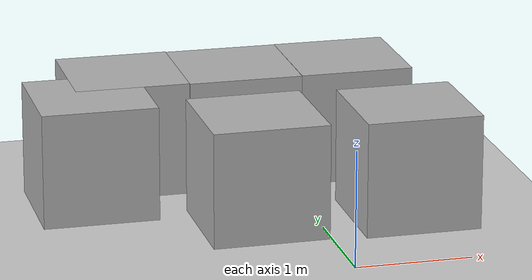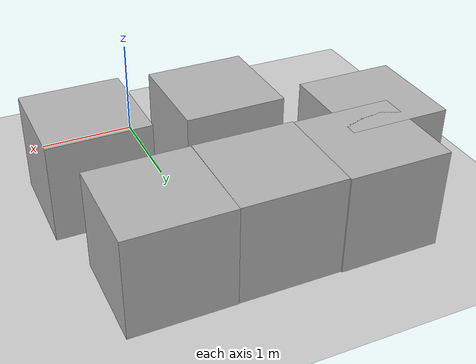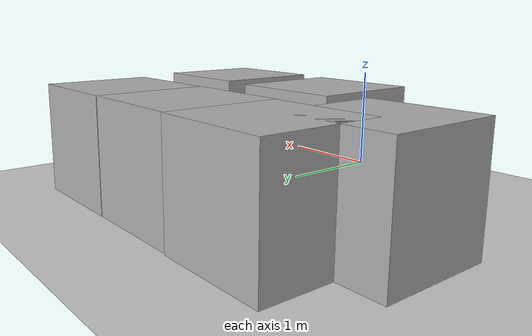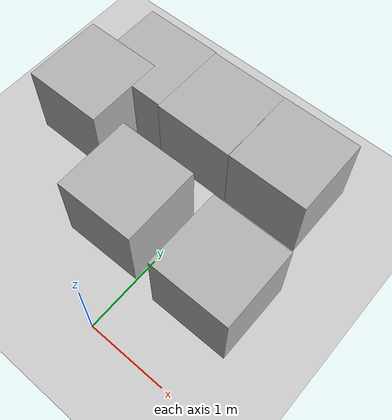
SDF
<sdf version='1.10'>
  <world name='empty'>
    <physics name='1ms' type='ignored'>
      <max_step_size>0.001</max_step_size>
      <real_time_factor>1</real_time_factor>
      <real_time_update_rate>1000</real_time_update_rate>
    </physics>
    <plugin name='gz::sim::systems::Physics' filename='gz-sim-physics-system'/>
    <plugin name='gz::sim::systems::UserCommands' filename='gz-sim-user-commands-system'/>
    <plugin name='gz::sim::systems::SceneBroadcaster' filename='gz-sim-scene-broadcaster-system'/>
    <plugin name='gz::sim::systems::Contact' filename='gz-sim-contact-system'/>
    <gravity>0 0 -9.8000000000000007</gravity>
    <magnetic_field>5.5644999999999998e-06 2.2875799999999999e-05 -4.2388400000000002e-05</magnetic_field>
    <atmosphere type='adiabatic'/>
    <scene>
      <ambient>0.400000006 0.400000006 0.400000006 1</ambient>
      <background>0.699999988 0.699999988 0.699999988 1</background>
      <shadows>true</shadows>
    </scene>
    <model name='ground_plane'>
      <static>true</static>
      <link name='link'>
        <collision name='collision'>
          <geometry>
            <plane>
              <normal>0 0 1</normal>
              <size>100 100</size>
            </plane>
          </geometry>
          <surface>
            <friction>
              <ode/>
            </friction>
            <bounce/>
            <contact/>
          </surface>
        </collision>
        <visual name='visual'>
          <geometry>
            <plane>
              <normal>0 0 1</normal>
              <size>100 100</size>
            </plane>
          </geometry>
          <material>
            <ambient>0.800000012 0.800000012 0.800000012 1</ambient>
            <diffuse>0.800000012 0.800000012 0.800000012 1</diffuse>
            <specular>0.800000012 0.800000012 0.800000012 1</specular>
          </material>
        </visual>
        <pose>0 0 0 0 0 0</pose>
        <inertial>
          <pose>0 0 0 0 0 0</pose>
          <mass>1</mass>
          <inertia>
            <ixx>1</ixx>
            <ixy>0</ixy>
            <ixz>0</ixz>
            <iyy>1</iyy>
            <iyz>0</iyz>
            <izz>1</izz>
          </inertia>
        </inertial>
        <enable_wind>false</enable_wind>
      </link>
      <pose>0 0 0 0 0 0</pose>
      <self_collide>false</self_collide>
    </model>
    <model name='box_0'>
      <static>true</static>
      <pose>0.78544282913208008 1.1469700336456299 0.5 9.5852598861329469e-21 -1.7019100547197896e-20 -1.1462799731553673e-21</pose>
      <link name='box_link'>
        <inertial>
          <inertia>
            <ixx>0.16666</ixx>
            <ixy>0</ixy>
            <ixz>0</ixz>
            <iyy>0.16666</iyy>
            <iyz>0</iyz>
            <izz>0.16666</izz>
          </inertia>
          <mass>1</mass>
          <pose>0 0 0 0 0 0</pose>
        </inertial>
        <collision name='box_collision'>
          <geometry>
            <box>
              <size>1 1 1</size>
            </box>
          </geometry>
          <surface>
            <friction>
              <ode/>
            </friction>
            <bounce/>
            <contact/>
          </surface>
        </collision>
        <visual name='box_visual'>
          <geometry>
            <box>
              <size>1 1 1</size>
            </box>
          </geometry>
          <material>
            <ambient>0.300000012 0.300000012 0.300000012 1</ambient>
            <diffuse>0.699999988 0.699999988 0.699999988 1</diffuse>
            <specular>1 1 1 1</specular>
          </material>
        </visual>
        <pose>0 0 0 0 0 0</pose>
        <enable_wind>false</enable_wind>
      </link>
      <static>true</static>
      <self_collide>false</self_collide>
    </model>
    <model name='box'>
      <pose>-0.5228173765746037 1.1984663997186882 0.49999967814729579 -5.8661556492516999e-07 2.0944129708092863e-08 0.008849196242830348</pose>
      <link name='box_link'>
        <inertial>
          <inertia>
            <ixx>0.16666</ixx>
            <ixy>0</ixy>
            <ixz>0</ixz>
            <iyy>0.16666</iyy>
            <iyz>0</iyz>
            <izz>0.16666</izz>
          </inertia>
          <mass>1</mass>
          <pose>0 0 0 0 0 0</pose>
        </inertial>
        <collision name='box_collision'>
          <geometry>
            <box>
              <size>1 1 1</size>
            </box>
          </geometry>
          <surface>
            <friction>
              <ode/>
            </friction>
            <bounce/>
            <contact/>
          </surface>
        </collision>
        <visual name='box_visual'>
          <geometry>
            <box>
              <size>1 1 1</size>
            </box>
          </geometry>
          <material>
            <ambient>0.300000012 0.300000012 0.300000012 1</ambient>
            <diffuse>0.699999988 0.699999988 0.699999988 1</diffuse>
            <specular>1 1 1 1</specular>
          </material>
        </visual>
        <pose>0 0 0 0 0 0</pose>
        <enable_wind>false</enable_wind>
      </link>
      <static>true</static>
      <self_collide>false</self_collide>
    </model>
    <model name='box_1'>
      <pose>-1.8002230269964776 2.0067598931510826 0.49999999020226371 1.9579222132377195e-08 -3.1271956950091015e-11 -8.0020838949650977e-06</pose>
      <link name='box_link'>
        <inertial>
          <inertia>
            <ixx>0.16666</ixx>
            <ixy>0</ixy>
            <ixz>0</ixz>
            <iyy>0.16666</iyy>
            <iyz>0</iyz>
            <izz>0.16666</izz>
          </inertia>
          <mass>1</mass>
          <pose>0 0 0 0 0 0</pose>
        </inertial>
        <collision name='box_collision'>
          <geometry>
            <box>
              <size>1 1 1</size>
            </box>
          </geometry>
          <surface>
            <friction>
              <ode/>
            </friction>
            <bounce/>
            <contact/>
          </surface>
        </collision>
        <visual name='box_visual'>
          <geometry>
            <box>
              <size>1 1 1</size>
            </box>
          </geometry>
          <material>
            <ambient>0.300000012 0.300000012 0.300000012 1</ambient>
            <diffuse>0.699999988 0.699999988 0.699999988 1</diffuse>
            <specular>1 1 1 1</specular>
          </material>
        </visual>
        <pose>0 0 0 0 0 0</pose>
        <enable_wind>false</enable_wind>
      </link>
      <static>true</static>
      <self_collide>false</self_collide>
    </model>
    <model name='box_2'>
      <pose>0.60531685357548648 2.6108842868817588 0.49999975186209289 4.68238112754999e-07 1.1689834200192956e-08 0.0022225154819508581</pose>
      <link name='box_link'>
        <inertial>
          <inertia>
            <ixx>0.16666</ixx>
            <ixy>0</ixy>
            <ixz>0</ixz>
            <iyy>0.16666</iyy>
            <iyz>0</iyz>
            <izz>0.16666</izz>
          </inertia>
          <mass>1</mass>
          <pose>0 0 0 0 0 0</pose>
        </inertial>
        <collision name='box_collision'>
          <geometry>
            <box>
              <size>1 1 1</size>
            </box>
          </geometry>
          <surface>
            <friction>
              <ode/>
            </friction>
            <bounce/>
            <contact/>
          </surface>
        </collision>
        <visual name='box_visual'>
          <geometry>
            <box>
              <size>1 1 1</size>
            </box>
          </geometry>
          <material>
            <ambient>0.300000012 0.300000012 0.300000012 1</ambient>
            <diffuse>0.699999988 0.699999988 0.699999988 1</diffuse>
            <specular>1 1 1 1</specular>
          </material>
        </visual>
        <pose>0 0 0 0 0 0</pose>
        <enable_wind>false</enable_wind>
      </link>
      <static>true</static>
      <self_collide>false</self_collide>
    </model>
    <model name='box_3'>
      <pose>-0.39605521457549131 2.6061471931939368 0.49999914479276919 -1.2059939740571418e-06 -4.8206994865317178e-09 -0.00054135329331832412</pose>
      <link name='box_link'>
        <inertial>
          <inertia>
            <ixx>0.16666</ixx>
            <ixy>0</ixy>
            <ixz>0</ixz>
            <iyy>0.16666</iyy>
            <iyz>0</iyz>
            <izz>0.16666</izz>
          </inertia>
          <mass>1</mass>
          <pose>0 0 0 0 0 0</pose>
        </inertial>
        <collision name='box_collision'>
          <geometry>
            <box>
              <size>1 1 1</size>
            </box>
          </geometry>
          <surface>
            <friction>
              <ode/>
            </friction>
            <bounce/>
            <contact/>
          </surface>
        </collision>
        <visual name='box_visual'>
          <geometry>
            <box>
              <size>1 1 1</size>
            </box>
          </geometry>
          <material>
            <ambient>0.300000012 0.300000012 0.300000012 1</ambient>
            <diffuse>0.699999988 0.699999988 0.699999988 1</diffuse>
            <specular>1 1 1 1</specular>
          </material>
        </visual>
        <pose>0 0 0 0 0 0</pose>
        <enable_wind>false</enable_wind>
      </link>
      <static>true</static>
      <self_collide>false</self_collide>
    </model>
    <model name='box_4'>
      <pose>-1.3960706998517627 2.6201430087910578 0.49999999097626091 -2.1130000128060689e-08 -3.1280467568706664e-09 -0.0005897141497613745</pose>
      <link name='box_link'>
        <inertial>
          <inertia>
            <ixx>0.16666</ixx>
            <ixy>0</ixy>
            <ixz>0</ixz>
            <iyy>0.16666</iyy>
            <iyz>0</iyz>
            <izz>0.16666</izz>
          </inertia>
          <mass>1</mass>
          <pose>0 0 0 0 0 0</pose>
        </inertial>
        <collision name='box_collision'>
          <geometry>
            <box>
              <size>1 1 1</size>
            </box>
          </geometry>
          <surface>
            <friction>
              <ode/>
            </friction>
            <bounce/>
            <contact/>
          </surface>
        </collision>
        <visual name='box_visual'>
          <geometry>
            <box>
              <size>1 1 1</size>
            </box>
          </geometry>
          <material>
            <ambient>0.300000012 0.300000012 0.300000012 1</ambient>
            <diffuse>0.699999988 0.699999988 0.699999988 1</diffuse>
            <specular>1 1 1 1</specular>
          </material>
        </visual>
        <pose>0 0 0 0 0 0</pose>
        <enable_wind>false</enable_wind>
      </link>
      <static>true</static>
      <self_collide>false</self_collide>
    </model>
    <light name='sun' type='directional'>
      <pose>0 0 10 0 0 0</pose>
      <cast_shadows>true</cast_shadows>
      <intensity>1</intensity>
      <direction>-0.5 0.10000000000000001 -0.90000000000000002</direction>
      <diffuse>0.800000012 0.800000012 0.800000012 1</diffuse>
      <specular>0.200000003 0.200000003 0.200000003 1</specular>
      <attenuation>
        <range>1000</range>
        <linear>0.01</linear>
        <constant>0.90000000000000002</constant>
        <quadratic>0.001</quadratic>
      </attenuation>
      <spot>
        <inner_angle>0</inner_angle>
        <outer_angle>0</outer_angle>
        <falloff>0</falloff>
      </spot>
    </light>
  </world>
</sdf>
